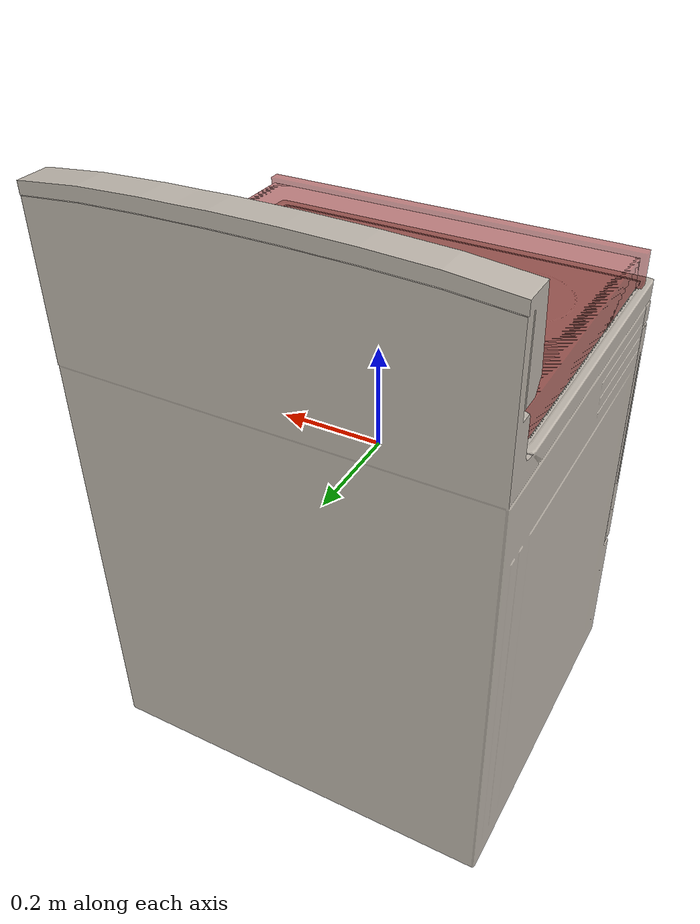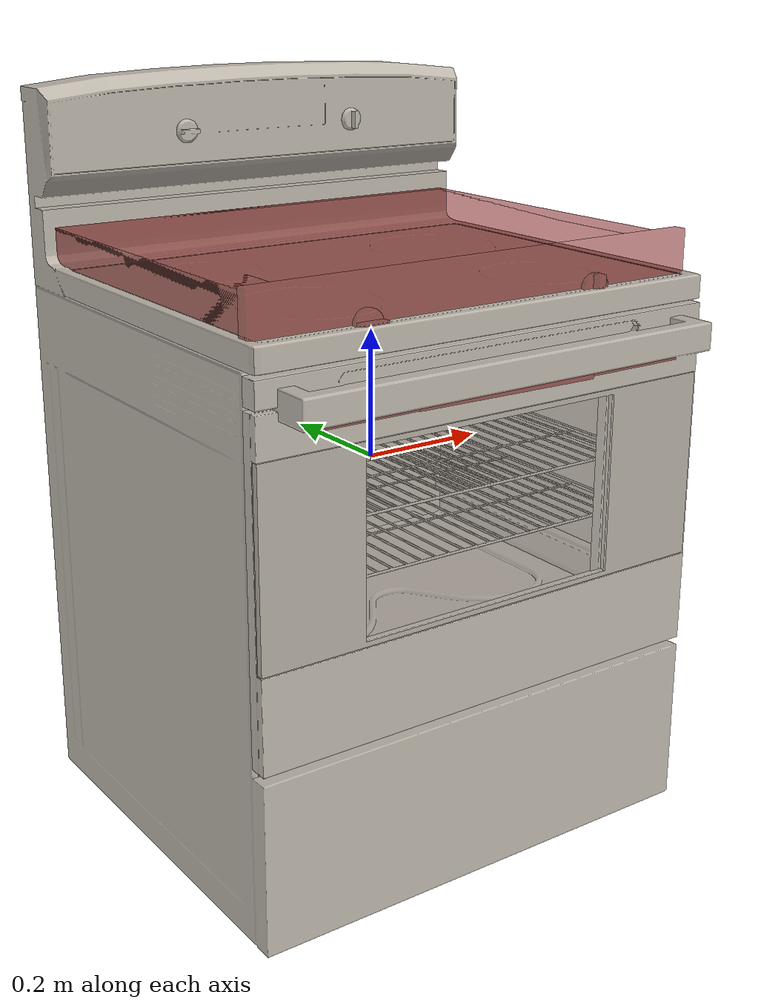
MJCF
<?xml version='1.0' encoding='UTF-8'?>
<mujoco model="model">
  <option timestep="0.002" gravity="0.0 0.0 -9.81"/>
  <compiler angle="radian"/>
  <asset>
    <mesh file="visuals/door.obj" name="door_vis"/>
    <mesh file="visuals/door_Clear.obj" name="door_Clear_vis"/>
    <mesh file="visuals/knob_temp.obj" name="knob_temp_vis"/>
    <mesh file="visuals/knob_time.obj" name="knob_time_vis"/>
    <mesh file="visuals/Body001.obj" name="Body001_vis"/>
    <mesh file="visuals/rack0.obj" name="rack0_vis"/>
    <mesh file="visuals/rack1.obj" name="rack1_vis"/>
    <texture file="visuals/T_BC001.png" name="Body001_material" type="2d"/>
    <material name="Body001_material" rgba="1 1 1 1.0" texture="Body001_material" shininess="0.5" specular="2"/>
    <texture file="visuals/T_BC001.png" name="door_material" type="2d"/>
    <material name="door_material" rgba="1 1 1 1.0" texture="door_material" shininess="0.5" specular="2"/>
    <texture file="visuals/T_BC001.png" name="door_Clear_material" type="2d"/>
    <material name="door_Clear_material" rgba="1 1 1 0.7090908885002136" texture="door_Clear_material" shininess="0.5" specular="2"/>
    <texture file="visuals/T_BC001.png" name="knob_temp_material" type="2d"/>
    <material name="knob_temp_material" rgba="1 1 1 1.0" texture="knob_temp_material" shininess="0.5" specular="2"/>
    <texture file="visuals/T_BC001.png" name="knob_time_material" type="2d"/>
    <material name="knob_time_material" rgba="1 1 1 1.0" texture="knob_time_material" shininess="0.5" specular="2"/>
    <texture file="visuals/T_BC001.png" name="rack0_material" type="2d"/>
    <material name="rack0_material" rgba="1 1 1 1.0" texture="rack0_material" shininess="0.5" specular="3"/>
    <texture file="visuals/T_BC001.png" name="rack1_material" type="2d"/>
    <material name="rack1_material" rgba="1 1 1 1.0" texture="rack1_material" shininess="0.5" specular="3"/>
  </asset>
  <default>
    <default class="visual">
      <geom conaffinity="0" contype="0" group="1" type="mesh"/>
    </default>
    <default class="collision">
      <geom group="0" rgba="0.5 0 0 0.5"/>
    </default>
    <default class="spawn">
      <geom group="0" rgba="1 1 1 0.5" contype="0" conaffinity="0"/>
      <site group="0" rgba="1 1 1 0.5"/>
    </default>
    <default class="region">
      <geom group="1" conaffinity="0" contype="0" rgba="0 1 0 0"/>
    </default>
  </default>
  <worldbody>
    <body>
      <body name="object">
        <geom mesh="Body001_vis" type="mesh" solimp="0.998 0.998 0.001" solref="0.001 1" friction="0.95 0.3 0.1" class="visual" material="Body001_material"/>
        <geom class="collision" type="box" pos="-0.33003697 0.03997060 0.00000000" size="0.028920480981469154 0.28983640670776367 0.34318095445632935" quat="1.0 0.0 0.0 0.0"/>
        <geom class="collision" type="box" pos="0.00152762 0.03997060 -0.30988106" size="0.3604850471019745 0.28983640670776367 0.03329990804195404" quat="1.0 0.0 0.0 0.0"/>
        <geom class="collision" type="box" pos="0.33346790 0.03997060 0.00000000" size="0.02854476496577263 0.28983640670776367 0.34318095445632935" quat="1.0 0.0 0.0 0.0"/>
        <geom class="collision" type="box" pos="0.00152762 0.03997060 0.26078877" size="0.3604850471019745 0.28983640670776367 0.08239217847585678" quat="1.0 0.0 0.0 0.0"/>
        <geom class="collision" type="box" pos="0.00152762 0.31351715 0.00000000" size="0.3604850471019745 0.01628987118601799 0.34318095445632935" quat="1.0 0.0 0.0 0.0"/>
        <geom class="collision" type="box" pos="-0.00018432 -0.25995258 0.29233542" size="0.36975643038749695 0.010069512762129307 0.060164764523506165" quat="1.0 0.0 0.0 0.0"/>
        <geom class="collision" type="box" pos="-0.29951438 0.02279972 0.06783497" size="0.003112552920356393 0.24076588451862335 0.003943608608096838" quat="1.0 0.0 0.0 0.0"/>
        <geom class="collision" type="box" pos="-0.30076510 0.02279972 0.07416253" size="0.0018618262838572264 0.24076588451862335 0.0024166179355233908" quat="1.0 0.0 0.0 0.0"/>
        <geom class="collision" type="box" pos="-0.29951438 0.02279972 -0.02258513" size="0.003112552920356393 0.24076588451862335 0.003943608608096838" quat="1.0 0.0 0.0 0.0"/>
        <geom class="collision" type="box" pos="-0.30076510 0.02279972 -0.01625757" size="0.0018618262838572264 0.24076588451862335 0.0024166179355233908" quat="1.0 0.0 0.0 0.0"/>
        <geom class="collision" type="box" pos="-0.29951438 0.02279972 -0.09944368" size="0.003112552920356393 0.24076588451862335 0.003943608608096838" quat="1.0 0.0 0.0 0.0"/>
        <geom class="collision" type="box" pos="-0.30076510 0.02279972 -0.10592052" size="0.0018618262838572264 0.24076588451862335 0.0024166179355233908" quat="1.0 0.0 0.0 0.0"/>
        <geom class="collision" type="box" pos="-0.29951438 0.02279972 -0.16229263" size="0.003112552920356393 0.24076588451862335 0.003943608608096838" quat="1.0 0.0 0.0 0.0"/>
        <geom class="collision" type="box" pos="-0.30076510 0.02279972 -0.16876946" size="0.0018618262838572264 0.24076588451862335 0.0024166179355233908" quat="1.0 0.0 0.0 0.0"/>
        <geom class="collision" type="box" pos="0.30232486 0.02279972 0.06783497" size="0.003112552920356393 0.24076588451862335 0.003943608608096838" quat="1.0 0.0 0.0 0.0"/>
        <geom class="collision" type="box" pos="0.30355090 0.02279972 0.07416253" size="0.0018618262838572264 0.24076588451862335 0.0024166179355233908" quat="1.0 0.0 0.0 0.0"/>
        <geom class="collision" type="box" pos="0.30232486 0.02279972 -0.02195488" size="0.003112552920356393 0.24076588451862335 0.003943608608096838" quat="1.0 0.0 0.0 0.0"/>
        <geom class="collision" type="box" pos="0.30355090 0.02279972 -0.01562732" size="0.0018618262838572264 0.24076588451862335 0.0024166179355233908" quat="1.0 0.0 0.0 0.0"/>
        <geom class="collision" type="box" pos="0.30232486 0.02279972 -0.09024069" size="0.003112552920356393 0.24076588451862335 0.003943608608096838" quat="1.0 0.0 0.0 0.0"/>
        <geom class="collision" type="box" pos="0.30355090 0.02279972 -0.09636574" size="0.0018618262838572264 0.24076588451862335 0.0024166179355233908" quat="1.0 0.0 0.0 0.0"/>
        <geom class="collision" type="box" pos="0.30232486 0.02279972 -0.16275841" size="0.003112552920356393 0.24076588451862335 0.003943608608096838" quat="1.0 0.0 0.0 0.0"/>
        <geom class="collision" type="box" pos="0.30355090 0.02279972 -0.16888346" size="0.0018618262838572264 0.24076588451862335 0.0024166179355233908" quat="1.0 0.0 0.0 0.0"/>
        <geom class="collision" type="box" pos="-0.33687115 -0.25257638 -0.05973272" size="0.033316634595394135 0.0025086624082177877 0.2924446165561676" quat="1.0 0.0 0.0 0.0"/>
        <geom class="collision" type="box" pos="0.33798417 -0.25257638 -0.05973272" size="0.03237505629658699 0.0025086624082177877 0.2924446165561676" quat="1.0 0.0 0.0 0.0"/>
        <geom class="collision" type="box" pos="0.00017665 -0.25257638 -0.32042581" size="0.3700258135795593 0.0025086624082177877 0.03108060732483864" quat="1.0 0.0 0.0 0.0"/>
        <geom class="collision" type="box" pos="0.00017665 -0.25257638 0.20794062" size="0.3700258135795593 0.0025086624082177877 0.02504580281674862" quat="1.0 0.0 0.0 0.0"/>
        <body name="door">
          <joint axis="1.0 0.0 0.0" pos="-0.0002061 -0.2714454162927723 -0.33475907831336976" limited="true" name="door_joint" range="0.0 1.15" type="hinge" damping="1" frictionloss="1" armature="1" stiffness="2"/>
          <geom mesh="door_vis" type="mesh" solimp="0.998 0.998 0.001" solref="0.001 1" friction="0.95 0.3 0.1" class="visual" material="door_material"/>
          <geom class="collision" type="box" pos="-0.00020610 -0.26399136 -0.05176752" size="0.36973434686660767 0.007454056292772293 0.28299155831336975" quat="1.0 0.0 0.0 0.0" name="door_main"/>
          <geom class="collision" type="box" pos="-0.29276612 -0.29357585 0.19392061" size="0.020844746381044388 0.023832838982343674 0.01592712663114071" quat="1.0 0.0 0.0 0.0"/>
          <geom class="collision" type="box" pos="0.28656062 -0.29357585 0.19384728" size="0.020844746381044388 0.02383282408118248 0.016000451520085335" quat="1.0 0.0 0.0 0.0"/>
          <geom class="collision" type="box" pos="-0.21927051 -0.31964767 0.19224752" size="0.0962480753660202 0.008052467368543148 0.014172614552080631" quat="1.0 0.0 0.0 0.0"/>
          <geom class="collision" type="box" pos="-0.00723155 -0.32351262 0.19209783" size="0.1442202627658844 0.010346781462430954 0.014322307892143726" quat="0.9998577237129211 0.0 -0.0 -0.01686682365834713" name="door_handle_main"/>
          <geom class="collision" type="box" pos="0.20587060 -0.31951359 0.19209783" size="0.10098174959421158 0.008831165730953217 0.014322307892143726" quat="1.0 0.0 0.0 0.0"/>
          <body name="door_Clear">
            <geom mesh="door_Clear_vis" type="mesh" solimp="0.998 0.998 0.001" solref="0.001 1" friction="0.95 0.3 0.1" class="visual" material="door_Clear_material"/>
          </body>
        </body>
        <body name="knob_temp">
          <joint axis="0.0 1.0 0.0" pos="0.19076806 -0.28089959 0.28625211" limited="true" name="knob_temp_joint" range="0.0 5.585053606381854" type="hinge" damping="0.05" frictionloss="0.75" armature="1"/>
          <geom mesh="knob_temp_vis" type="mesh" solimp="0.998 0.998 0.001" solref="0.001 1" friction="0.95 0.3 0.1" class="visual" material="knob_temp_material"/>
          <geom class="collision" type="box" pos="0.19090828 -0.28464747 0.28658870" size="0.0056254505179822445 0.0069765266962349415 0.021234922111034393" quat="1.0 0.0 0.0 0.0" friction="100 0.5 0.01"/>
          <geom class="collision" type="cylinder" pos="0.19143209 -0.27438587 0.28637275" size="0.02240707352757454 0.0038076224736869335" quat="0.7071067094802856 0.7071068286895752 0.0 0.0" name="knob_temp_main" friction="100 0.5 0.01"/>
        </body>
        <body name="knob_time">
          <joint axis="0.0 1.0 0.0" pos="-0.19305769 -0.28089956 0.28656864" limited="true" name="knob_time_joint" range="0.0 5.235987755982989" type="hinge" damping="0.05" frictionloss="0.75" armature="1"/>
          <geom mesh="knob_time_vis" type="mesh" solimp="0.998 0.998 0.001" solref="0.001 1" friction="0.95 0.3 0.1" class="visual" material="knob_time_material"/>
          <geom class="collision" type="box" pos="-0.19453174 -0.28464747 0.28646982" size="0.021234922111034393 0.0069765266962349415 0.005625448655337095" quat="1.0 0.0 0.0 0.0" friction="100 0.5 0.01"/>
          <geom class="collision" type="cylinder" pos="-0.19510065 -0.27438587 0.28637275" size="0.02240702696144581 0.003807611530646682" quat="0.7071067094802856 0.7071068286895752 0.0 0.0" name="knob_time_main" friction="100 0.5 0.01"/>
        </body>
        <body name="rack0">
          <geom class="region" name="reg_rack0" type="box" pos="0.0021639150000000162 0.026254625000000004 -0.084311615" size="0.291443925 0.235654275 0.06333802499999999"/>
          <joint axis="0.0 -1.0 0.0" pos="0.00036704 0.02595848 -0.15541413" limited="true" name="rack0_joint" range="0.0 0.35" type="slide" damping="1" frictionloss="1" armature=".01" stiffness="0.05"/>
          <geom mesh="rack0_vis" type="mesh" solimp="0.998 0.998 0.001" solref="0.001 1" friction="0.95 0.3 0.1" class="visual" material="rack0_material"/>
          <geom class="collision" type="box" pos="0.00060857 0.02584955 -0.15517819" size="0.2986590564250946 0.2399853765964508 0.0029299412854015827" quat="1.0 0.0 0.0 0.0"/>
        </body>
        <body name="rack1">
          <geom class="region" name="reg_rack1" type="box" pos="0.0021639150000000162 0.026254625000000004 0.083939925" size="0.291443925 0.235654275 0.08945165499999999"/>
          <joint axis="0.0 -1.0 0.0" pos="0.00036704 0.02595842 -0.01325671" limited="true" name="rack1_joint" range="0.0 0.35" type="slide" damping="1" frictionloss="1" armature=".01" stiffness="0.05"/>
          <geom mesh="rack1_vis" type="mesh" solimp="0.998 0.998 0.001" solref="0.001 1" friction="0.95 0.3 0.1" class="visual" material="rack1_material"/>
          <geom class="collision" type="box" pos="0.00060857 0.02660379 -0.01343382" size="0.2986590564250946 0.23923112452030182 0.0029299412854015827" quat="1.0 0.0 0.0 0.0"/>
        </body>
        <geom class="region" name="reg_int" type="box" pos="0.0010713350000000066 0.02317495500000001 -0.048895285" size="0.294870955 0.268051625 0.222300795"/>
        <geom class="region" name="reg_main" type="box" pos="0.0 0.02938885499999999 0.0" size="0.371 0.301418165 0.35350017"/>
      </body>
    </body>
  </worldbody>
  <actuator>
    <motor name="door_joint_actuator" joint="door_joint" gear="50"/>
    <motor name="knob_temp_joint_actuator" joint="knob_temp_joint" gear="10"/>
    <motor name="knob_time_joint_actuator" joint="knob_time_joint" gear="10"/>
    <motor name="rack0_joint_actuator" joint="rack0_joint" gear="50"/>
    <motor name="rack1_joint_actuator" joint="rack1_joint" gear="50"/>
  </actuator>
</mujoco>
